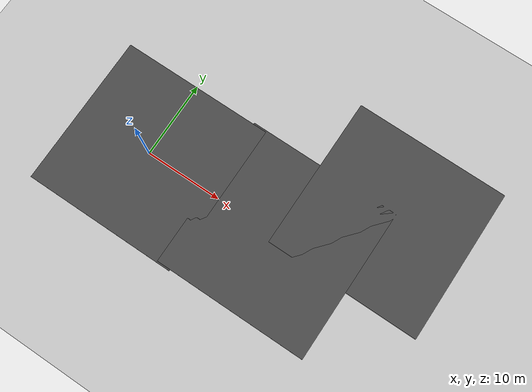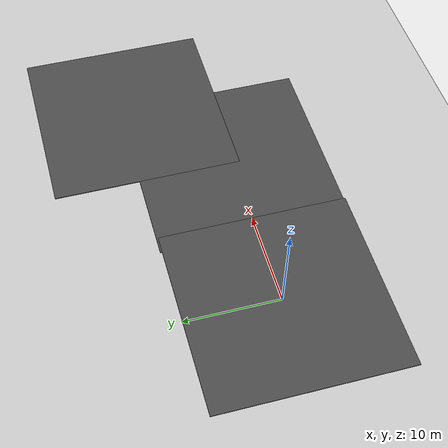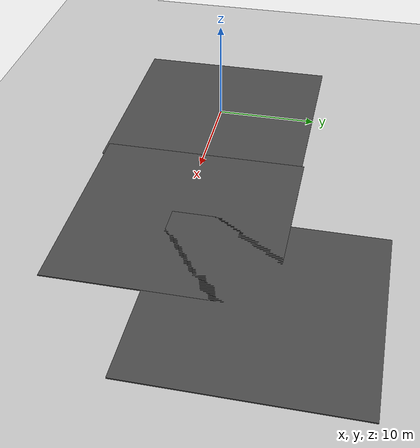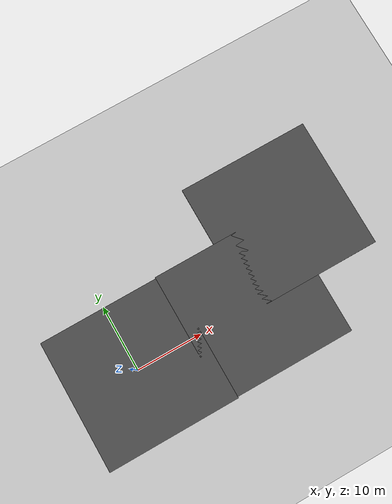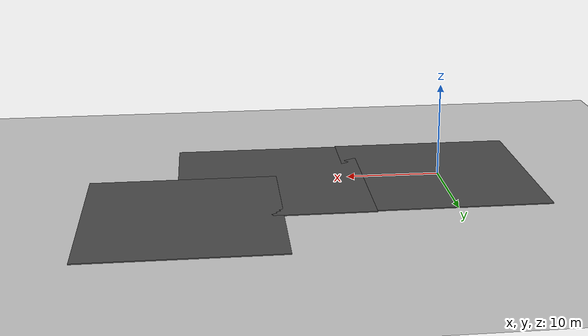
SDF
<sdf version="1.7">
 <world name="default">
  <model name="ground_plane">
   <static>1</static>
   <link name="link">
    <collision name="collision">
     <geometry><plane><normal>0 0 1</normal><size>100 100</size></plane></geometry>
     <surface><friction><ode><mu>100</mu><mu2>50</mu2></ode></friction></surface>
    </collision>
    <visual name="visual">
     <cast_shadows>0</cast_shadows>
     <geometry><plane><normal>0 0 1</normal><size>100 100</size></plane></geometry>
     <material>
      <script><uri>file://media/materials/scripts/gazebo.material</uri><name>Gazebo/Grey</name></script>
     </material>
    </visual>
    <velocity_decay><linear>0</linear><angular>0</angular></velocity_decay>
   </link>
  </model>
  <model name="asphalt_plane">
   <static>1</static>
   <link name="link">
    <collision name="collision"><geometry><box><size>20 20 0.1</size></box></geometry></collision>
    <visual name="visual">
     <cast_shadows>0</cast_shadows>
     <geometry><box><size>20 20 0.1</size></box></geometry>
     <material>
      <script>
       <uri>model://asphalt_plane/materials/scripts</uri>
       <uri>model://asphalt_plane/materials/textures</uri>
       <name>vrc/asphalt</name>
      </script>
     </material>
    </visual>
    <velocity_decay><linear>0</linear><angular>0</angular></velocity_decay>
   </link>
   <pose>0.076733 -0.110379 0 0 -0 0</pose>
  </model>
  <model name="asphalt_plane_clone">
   <static>1</static>
   <link name="link">
    <collision name="collision"><geometry><box><size>20 20 0.1</size></box></geometry></collision>
    <visual name="visual">
     <cast_shadows>0</cast_shadows>
     <geometry><box><size>20 20 0.1</size></box></geometry>
     <material>
      <script>
       <uri>model://asphalt_plane/materials/scripts</uri>
       <uri>model://asphalt_plane/materials/textures</uri>
       <name>vrc/asphalt</name>
      </script>
     </material>
    </visual>
    <velocity_decay><linear>0</linear><angular>0</angular></velocity_decay>
   </link>
   <pose>18.2922 0.080296 0 0 -0 0</pose>
  </model>
  <model name="asphalt_plane_clone_clone_0">
   <static>1</static>
   <link name="link">
    <collision name="collision"><geometry><box><size>20 20 0.1</size></box></geometry></collision>
    <visual name="visual">
     <cast_shadows>0</cast_shadows>
     <geometry><box><size>20 20 0.1</size></box></geometry>
     <material>
      <script>
       <uri>model://asphalt_plane/materials/scripts</uri>
       <uri>model://asphalt_plane/materials/textures</uri>
       <name>vrc/asphalt</name>
      </script>
     </material>
    </visual>
    <velocity_decay><linear>0</linear><angular>0</angular></velocity_decay>
   </link>
   <pose>27.6964 9.09147 0 0 -0 0</pose>
  </model>
 </world>
</sdf>
